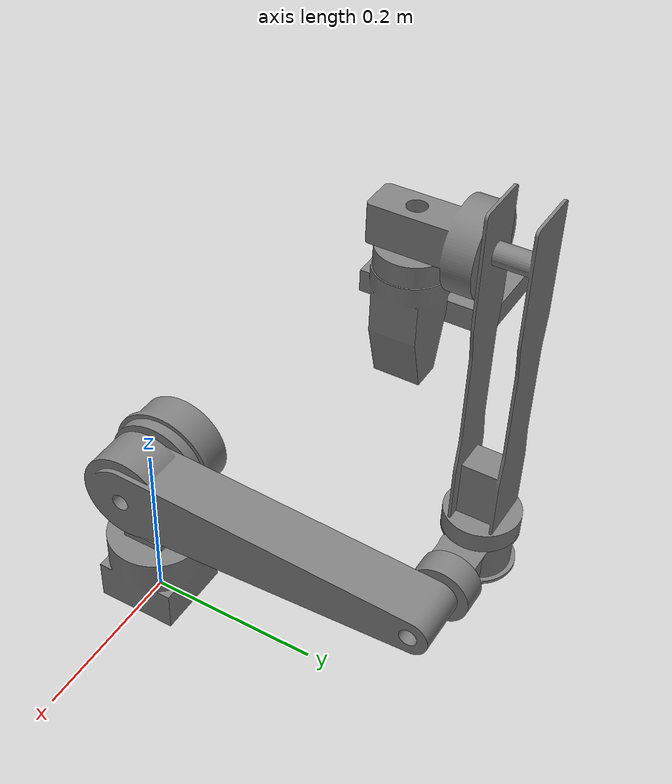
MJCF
<mujoco model="robot_arm">
  <compiler angle="radian" meshdir="assets"/>

  <option integrator="implicitfast"/>

  <default>
    <default class="brazito">
      <joint damping="1" frictionloss="1"/>
      <general biastype="affine" gainprm="1000" biasprm="0 -1000 -100" forcerange="-30 30"/>
      <default class="visual">
        <geom type="mesh" group="2" contype="0" conaffinity="0"/>
      </default>
      <default class="collision">
        <geom type="cylinder" group="3" mass="0" density="0"/>
      </default>
    </default>
  </default>

  <asset>
    <mesh file="base_link.obj"/>
    <mesh file="L1.obj"/>
    <mesh file="L2.obj"/>
    <mesh file="L3Vcami.obj"/>
    <mesh file="L4Vcami.obj"/>
    <mesh file="L5Vcami.obj"/>
    <mesh file="L6Vcami.obj"/>
  </asset>

  <worldbody>
    <body name="base_link" childclass="brazito">
      <inertial pos="-0.00334984 -0.00013615 0.0249584" quat="-0.00692194 0.682592 0.00133293 0.730766" mass="0.472475"
        diaginertia="0.000531375 0.000415207 0.000378658"/>
      <geom class="visual" mesh="base_link"/>

      <!-- LINK1 -->
      <body name="link01" pos="0 0 0.0906">
        <inertial pos="2.47e-06 -0.00025198 0.0231717" quat="0.708578 0.705633 0.000281462 -0.000355927" mass="0.673326"
          diaginertia="0.00128328 0.000839362 0.000719308"/>
        <joint name="joint1" axis="0 0 1" range="-2.61799 2.61799"/>
        <geom class="visual" mesh="L1"/>

        <!-- LINK 2 -->
        <body name="link02" pos="-0.0065 0 0.0902">
          <inertial pos="-0.110126 0.00240029 0.00158266" quat="0.00748058 0.707092 -0.0114473 0.70699" mass="1.19132"
            diaginertia="0.0246612 0.0243113 0.00100468"/>
          <joint name="joint2" axis="1 0 0" range="0 2.96706" damping="2"/>
          <geom class="visual" mesh="L2"/>
          <geom size="0.0325 0.051" quat="1 1 0 0" class="collision"/>
          <geom size="0.0225 0.1175" pos="-0.1625 0 0" quat="1 0 1 0" class="collision"/>
          <geom size="0.0325 0.0255" pos="-0.35 0 0" quat="1 1 0 0" class="collision"/>

          <!-- LINK 3 -->
          <body name="link03" pos="-0.03 0.3415 0 ">
            <inertial pos="0.106092 -0.00541815 0.0347638" quat="0.540557 0.443575 0.426319 0.573839" mass="0.839409"
              diaginertia="0.00954365 0.00938711 0.000558432"/>
            <joint name="joint3" axis="1 0 0" range="-2.87979 0"/>
            <geom class="visual" mesh="L3Vcami"/>
            <geom size="0.02 0.058" pos="0.128 0 0.055" quat="1 0 1 0" class="collision"/>
            <geom size="0.0325 0.0295" pos="0.2205 0 0.055" quat="0.5 -0.5 0.5 0.5" class="collision"/>

            <!-- LINK 4 -->
            <body name="link04" pos="-0.06 0 0.0238">
              <inertial pos="0.0436668 0.00364738 -0.00170192" quat="0.0390835 0.726445 -0.0526787 0.684087"
                mass="0.564046" diaginertia="0.000981656 0.00094053 0.000302655"/>
              <joint name="joint4" axis="0 0 1" range="-1.51844 1.51844"/>
              <geom class="visual" mesh="L4Vcami"/>
              <geom size="0.0325 0.0335" pos="0.072 0 0" class="collision"/>

              <!-- LINK 5 -->
              <body name="link05" pos="0 -0.024 0.321">
                <inertial pos="0.0312153 0 0.00646316" quat="0.462205 0.535209 0.53785 0.45895" mass="0.389385"
                  diaginertia="0.000558961 0.000547317 0.000167332"/>
                <joint name="joint5" axis="0 1 0" range="-1.3439 1.3439"/>
                <geom class="visual" mesh="L5Vcami"/>

                <!-- LINK 6 -->
                <body name="link06" pos="0 -0.0755 -0.02">
                  <inertial pos="0.0241569 -0.00017355 -0.00143876" quat="0.998779 0.0457735 -0.00663717 0.0173548"
                    mass="0.288758" diaginertia="0.00018333 0.000147464 0.000146786"/>
                  <joint name="joint6" axis="0 0 1" range="-2.79253 2.79253"/>
                  <geom class="visual" mesh="L6Vcami"/>
                  <geom size="0.0325 0.0255" pos="0.0255 0 0" quat="1 0 1 0" class="collision"/>
                </body>
              </body>
            </body>
          </body>
        </body>
      </body>
    </body>
  </worldbody>

  <actuator>
    <general class="brazito" name="motor1" joint="joint1" ctrlrange="-2.61799 2.61799"/>
    <general class="brazito" name="motor2" joint="joint2" ctrlrange="0 2.96706" forcerange="-60 60" gainprm="1500"
      biasprm="0 -1500 -150"/>
    <general class="brazito" name="motor3" joint="joint3" ctrlrange="-2.87979 0"/>
    <general class="brazito" name="motor4" joint="joint4" ctrlrange="-1.51844 1.51844"/>
    <general class="brazito" name="motor5" joint="joint5" ctrlrange="-1.3439 1.3439"/>
    <general class="brazito" name="motor6" joint="joint6" ctrlrange="-2.79253 2.79253"/>
  </actuator>

</mujoco>
